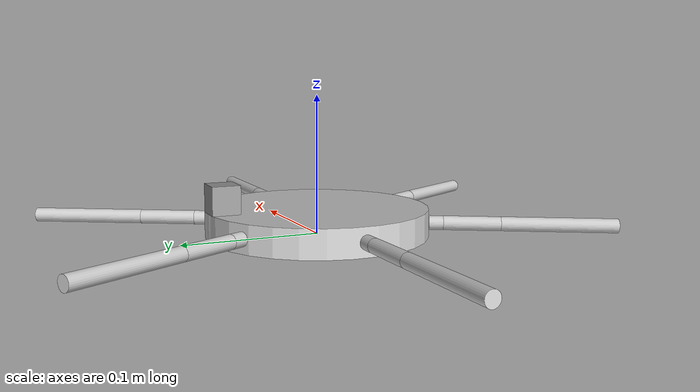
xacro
<?xml version="1.0"?>
<robot name="hexapod" xmlns:xacro="http://www.ros.org/wiki/xacro">

    <!-- ============================ Constants ============================ -->

    <xacro:property name="robot_name"           value="hexapod"/>
    <xacro:property name="base_radius"          value="0.08"/>
    <xacro:property name="base_depth"           value="0.02"/>
    <xacro:property name="coxa_length"          value="0.01"/>
    <xacro:property name="femur_length"         value="0.04"/>
    <xacro:property name="tibia_length"         value="0.08"/>
    <xacro:property name="base_mass"            value="4.0"/>
    <xacro:property name="coxa_mass"            value="0.2"/>
    <xacro:property name="femur_mass"           value="0.8"/>
    <xacro:property name="tibia_mass"           value="1.6"/>
    <xacro:property name="inertia"              value="0.1"/>
    <xacro:property name="L1_angle"             value="${2*pi/3}"/>
    <xacro:property name="R1_angle"             value="${pi/3}"/>
    <xacro:property name="L2_angle"             value="${pi}"/>
    <xacro:property name="R2_angle"             value="${0}"/>
    <xacro:property name="L3_angle"             value="${4*pi/3}"/>
    <xacro:property name="R3_angle"             value="${5*pi/3}"/>
    <xacro:property name="hip_lower_limit"      value="${-pi}"/>
    <xacro:property name="hip_upper_limit"      value="${pi}"/>
    <xacro:property name="knee_lower_limit"     value="${-pi/2}"/>
    <xacro:property name="knee_upper_limit"     value="${pi/2}"/>
    <xacro:property name="ankle_lower_limit"    value="${0}"/>
    <xacro:property name="ankle_upper_limit"    value="${pi}"/>
    <xacro:property name="camera_name"          value="depth_camera"/>
    <xacro:property name="camera_size"          value="0.02" />

    <!-- =========================== Base Macro =========================== -->

    <xacro:macro name="base">

        <link name="${robot_name}/base_link">
            <inertial>
                <mass value="${base_mass}"/>
                <inertia ixx="${inertia}" iyy="${inertia}" izz="${inertia}" ixy="0.0" ixz="0.0" iyz="0.0"/>
            </inertial>
            <visual>
                <geometry>
                    <mesh filename="package://hexapod_description/meshes/base.dae"/>
                </geometry>
            </visual>
            <collision>
                <geometry>
                    <mesh filename="package://hexapod_description/meshes/base.dae"/>
                </geometry>
            </collision>
        </link>

    </xacro:macro>

    <!-- ============================ Leg Macro ============================ -->

    <xacro:macro name="leg" params="prefix x y z roll pitch yaw">

        <!-- Links -->

        <link name="${robot_name}/${prefix}_coxa_link">
            <inertial>
                <origin xyz="0 0 0" rpy="0 0 0"/>
                <mass value="${coxa_mass}"/>
                <inertia ixx="${inertia}" iyy="${inertia}" izz="${inertia}" ixy="0.0" ixz="0.0" iyz="0.0"/>
            </inertial>
            <visual name="">
                <origin xyz="0 0 0" rpy="0 0 0"/>
                <geometry>
                    <mesh filename="package://hexapod_description/meshes/coxa.dae"/>
                </geometry>
            </visual>
            <collision>
                <origin xyz="0 0 0" rpy="0 0 0"/>
                <geometry>
                    <mesh filename="package://hexapod_description/meshes/coxa.dae"/>
                </geometry>
            </collision>
        </link>

        <link name="${robot_name}/${prefix}_femur_link">
            <inertial>
                <origin xyz="0 0 0" rpy="0 0 0"/>
                <mass value="${femur_mass}"/>
                <inertia ixx="${inertia}" iyy="${inertia}" izz="${inertia}" ixy="0.0" ixz="0.0" iyz="0.0"/>
            </inertial>
            <visual name="">
                <origin xyz="0 0 0" rpy="0 0 0"/>
                <geometry>
                    <mesh filename="package://hexapod_description/meshes/femur.dae"/>
                </geometry>
            </visual>
            <collision>
                <origin xyz="0 0 0" rpy="0 0 0"/>
                <geometry>
                    <mesh filename="package://hexapod_description/meshes/femur.dae"/>
                </geometry>
            </collision>
        </link>

        <link name="${robot_name}/${prefix}_tibia_link">
            <inertial>
                <origin xyz="0 0 0" rpy="0 0 0"/>
                <mass value="${tibia_mass}"/>
                <inertia ixx="${inertia}" iyy="${inertia}" izz="${inertia}" ixy="0.0" ixz="0.0" iyz="0.0"/>
            </inertial>
            <visual name="">
                <origin xyz="0 0 0" rpy="0 0 0"/>
                <geometry>
                    <mesh filename="package://hexapod_description/meshes/tibia.dae"/>
                </geometry>
            </visual>
            <collision>
                <origin xyz="0 0 0" rpy="0 0 0"/>
                <geometry>
                    <mesh filename="package://hexapod_description/meshes/tibia.dae"/>
                </geometry>
            </collision>
        </link>

        <link name="${robot_name}/${prefix}_foot_link"/>

        <!-- Joints -->

        <joint name="${prefix}_hip_joint" type="revolute">
            <origin xyz="${x} ${y} ${z}" rpy="${roll} ${pitch} ${yaw}"/>
            <parent link="${robot_name}/base_link"/>
            <child link="${robot_name}/${prefix}_coxa_link"/>
            <axis xyz="0 -1 0"/>
            <limit lower="${hip_lower_limit}" upper="${hip_upper_limit}" effort="30" velocity="${pi}"/>
            <safety_controller k_position="100.0" k_velocity="40.0" soft_lower_limit="-3" soft_upper_limit="3"/>
        </joint>

        <joint name="${prefix}_knee_joint" type="revolute">
            <origin xyz="0 0 ${coxa_length}" rpy="0 0 0"/>
            <parent link="${robot_name}/${prefix}_coxa_link"/>
            <child link="${robot_name}/${prefix}_femur_link"/>
            <axis xyz="1 0 0"/>
            <limit lower="${knee_lower_limit}" upper="${knee_upper_limit}" effort="30" velocity="${pi}"/>
            <safety_controller k_position="100.0" k_velocity="40.0" soft_lower_limit="-3" soft_upper_limit="3"/>
        </joint>

        <joint name="${prefix}_ankle_joint" type="revolute">
            <origin xyz="0 0 ${femur_length}" rpy="0 0 0"/>
            <parent link="${robot_name}/${prefix}_femur_link"/>
            <child link="${robot_name}/${prefix}_tibia_link"/>
            <axis xyz="-1 0 0"/>
            <limit lower="${ankle_lower_limit}" upper="${ankle_upper_limit}" effort="30" velocity="${pi}"/>
            <safety_controller k_position="100.0" k_velocity="40.0" soft_lower_limit="-3" soft_upper_limit="3"/>
        </joint>

        <joint name="${prefix}_foot_joint" type="fixed">
            <origin xyz="0 0 ${tibia_length}" rpy="0 0 0"/>
            <parent link="${robot_name}/${prefix}_tibia_link"/>
            <child link="${robot_name}/${prefix}_foot_link"/>
        </joint>

        <!-- Gazebo Collision -->

        <gazebo reference="${prefix}_tibia_link">
            <kp>1000000.0</kp>    <!-- contact stiffness -->
            <kd>100.0</kd>        <!-- damping -->
            <collision name="${prefix}_tibia_collision">
                <surface>
                    <friction>
                        <ode>
                            <mu>1.0</mu>
                            <mu2>1.0</mu2>
                        </ode>
                    </friction>
                </surface>
            </collision>
        </gazebo>

        <!-- Transmission -->

        <transmission name="${prefix}_hip_joint_trans">
            <type>transmission_interface/SimpleTransmission</type>
            <joint name="${prefix}_hip_joint">
                <hardwareInterface>hardware_interface/EffortJointInterface</hardwareInterface>
            </joint>
            <actuator name="${prefix}_hip_joint_motor">
                <hardwareInterface>hardware_interface/EffortJointInterface</hardwareInterface>
                <mechanicalReduction>1</mechanicalReduction>
            </actuator>
        </transmission>

        <transmission name="${prefix}_knee_joint_trans">
            <type>transmission_interface/SimpleTransmission</type>
            <joint name="${prefix}_knee_joint">
                <hardwareInterface>hardware_interface/EffortJointInterface</hardwareInterface>
            </joint>
            <actuator name="${prefix}_knee_joint_motor">
                <hardwareInterface>hardware_interface/EffortJointInterface</hardwareInterface>
                <mechanicalReduction>1</mechanicalReduction>
            </actuator>
        </transmission>

        <transmission name="${prefix}_ankle_joint_trans">
            <type>transmission_interface/SimpleTransmission</type>
            <joint name="${prefix}_ankle_joint">
                <hardwareInterface>hardware_interface/EffortJointInterface</hardwareInterface>
            </joint>
            <actuator name="${prefix}_ankle_joint_motor">
                <hardwareInterface>hardware_interface/EffortJointInterface</hardwareInterface>
                <mechanicalReduction>1</mechanicalReduction>
            </actuator>
        </transmission>

    </xacro:macro>

    <!-- ========================== Generate URDF ========================== -->

    <!-- Uncomment out the below code to position the robot in midair -->

    <!-- Dummy Link and Joint avoids "KDL does not support a root link with an inertia" error -->
    <link name="dummy_link"/>

    <xacro:base/>

    <joint name="dummy_joint" type="fixed">
        <parent link="dummy_link"/>
        <child link="${robot_name}/base_link"/>
    </joint>

    <xacro:leg prefix="L1"
        x="${base_radius*cos(L1_angle)}" y="${base_radius*sin(L1_angle)}" z="0.01"
        roll="${-pi/2}" pitch="0.0" yaw="0.5"
    />
    <xacro:leg prefix="R1"
        x="${base_radius*cos(R1_angle)}" y="${base_radius*sin(R1_angle)}" z="0.01"
        roll="${-pi/2}" pitch="0.0" yaw="-0.5"
    />
    <xacro:leg prefix="L2"
        x="${base_radius*cos(L2_angle)}" y="${base_radius*sin(L2_angle)}" z="0.01"
        roll="${-pi/2}" pitch="0.0" yaw="${pi/2}"
    />
    <xacro:leg prefix="R2"
        x="${base_radius*cos(R2_angle)}" y="${base_radius*sin(R2_angle)}" z="0.01"
        roll="${-pi/2}" pitch="0.0" yaw="${-pi/2}"
    />
    <xacro:leg prefix="L3"
        x="${base_radius*cos(L3_angle)}" y="${base_radius*sin(L3_angle)}" z="0.01"
        roll="${-pi/2}" pitch="0.0" yaw="${pi-0.5}"
    />
    <xacro:leg prefix="R3"
        x="${base_radius*cos(R3_angle)}" y="${base_radius*sin(R3_angle)}" z="0.01"
        roll="${-pi/2}" pitch="0.0" yaw="${-(pi-0.5)}"
    />

    <!-- ============================= Camera ============================== -->

    <joint name="camera_joint" type="fixed">
        <axis xyz="0 0 1" />
        <origin xyz="0 ${base_radius - camera_size/2} ${base_depth + camera_size/2}"
                rpy="0 0 ${pi/2}"/>
        <parent link="${robot_name}/base_link"/>
        <child link="depth_camera_link"/>
    </joint>

    <!-- Depth Camera -->
    <link name="depth_camera_link">
        <collision>
            <origin xyz="0 0 0" rpy="0 0 0"/>
            <geometry>
                <box size="${camera_size} ${camera_size} ${camera_size}"/>
            </geometry>
        </collision>
        <visual>
            <origin xyz="0 0 0" rpy="0 0 0"/>
            <geometry>
                <box size="${camera_size} ${camera_size} ${camera_size}"/>
            </geometry>
        </visual>
        <inertial>
            <mass value="1e-5" />
            <origin xyz="0 0 0" rpy="0 0 0"/>
            <inertia ixx="1e-6" ixy="0" ixz="0" iyy="1e-6" iyz="0" izz="1e-6" />
        </inertial>
    </link>

    <!-- ============================= Gazebo ============================= -->

    <!-- ROS control -->
    <gazebo>
        <plugin name="gazebo_ros_control" filename="libgazebo_ros_control.so">
            <robotNamespace>/hexapod</robotNamespace>
        </plugin>
    </gazebo>

    <gazebo reference="depth_camera_link">
        <material>Gazebo/Grey</material>
    </gazebo>

    <!-- Depth Camera -->
    <gazebo reference="depth_camera_link">
        <sensor name="depth_camera" type="depth">
            <update_rate>20.0</update_rate>
            <camera>
                <horizontal_fov>1.047198</horizontal_fov>
                <image>
                    <width>640</width>
                    <height>480</height>
                    <format>R8G8B8</format>
                </image>
                <clip>
                    <near>0.01</near>
                    <far>3.0</far>
                </clip>
            </camera>
            <plugin name="depth_camera_controller" filename="libgazebo_ros_openni_kinect.so">
                <baseline>0.2</baseline>
                <alwaysOn>true</alwaysOn>
                <updateRate>0.0</updateRate>
                <cameraName>camera_ir</cameraName>
                <imageTopicName>/camera/color/image_raw</imageTopicName>
                <cameraInfoTopicName>/camera/color/camera_info</cameraInfoTopicName>
                <depthImageTopicName>/camera/depth/image_raw</depthImageTopicName>
                <depthImageInfoTopicName>/camera/depth/camera_info</depthImageInfoTopicName>
                <pointCloudTopicName>/camera/depth/points</pointCloudTopicName>
                <frameName>depth_camera_link</frameName>
                <pointCloudCutoff>0.01</pointCloudCutoff>
                <pointCloudCutoffMax>3.0</pointCloudCutoffMax>
                <distortionK1>0</distortionK1>
                <distortionK2>0</distortionK2>
                <distortionK3>0</distortionK3>
                <distortionT1>0</distortionT1>
                <distortionT2>0</distortionT2>
                <CxPrime>0</CxPrime>
                <Cx>0</Cx>
                <Cy>0</Cy>
                <focalLength>0</focalLength>
                <hackBaseline>0</hackBaseline>
            </plugin>
        </sensor>
    </gazebo>

    <!-- Camera -->

    <!-- IMU, not used yet -->

</robot>
